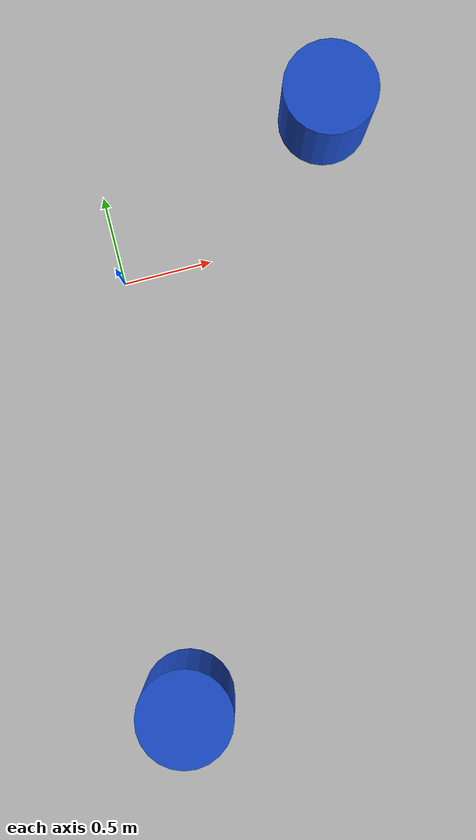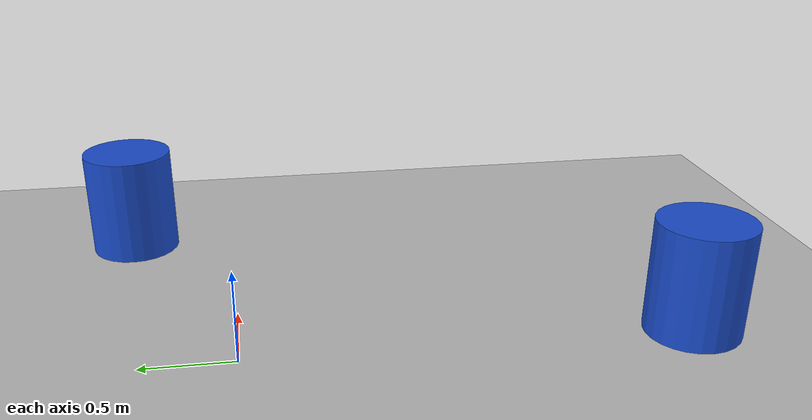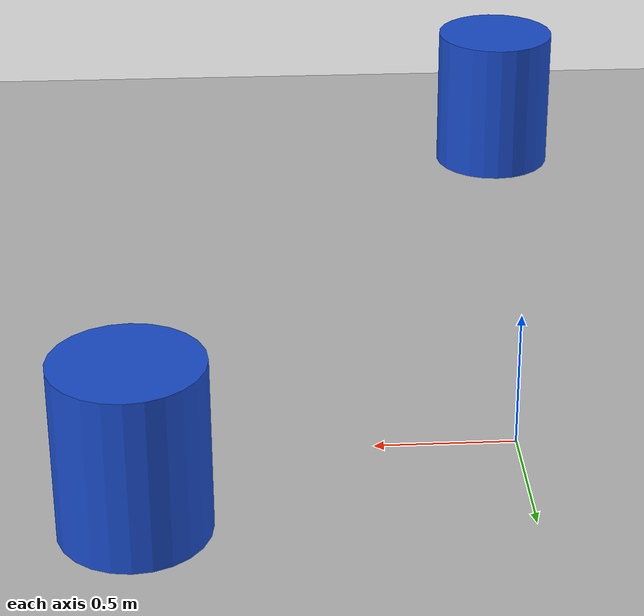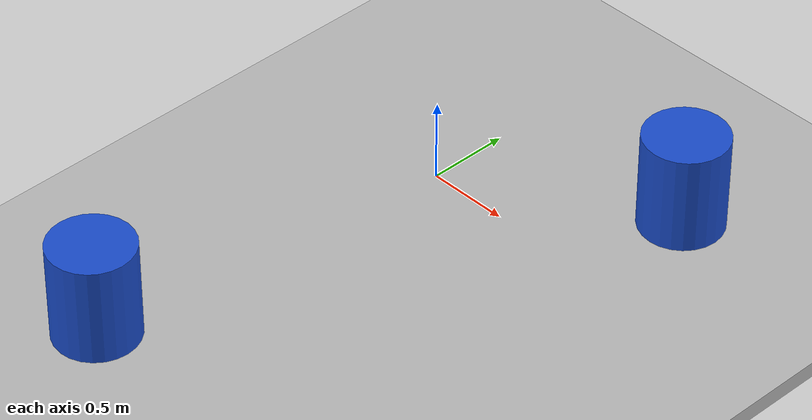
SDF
<?xml version="1.0" ?>
<sdf version="1.9">
  <world name="straight_lane_obstacles1">

    <plugin name='ignition::gazebo::systems::Physics' filename='ignition-gazebo-physics-system'/>
    <plugin name='ignition::gazebo::systems::UserCommands' filename='ignition-gazebo-user-commands-system'/>
    <plugin name='ignition::gazebo::systems::SceneBroadcaster' filename='ignition-gazebo-scene-broadcaster-system'/>

    <physics type="ode">
      <max_step_size>0.001</max_step_size>
      <real_time_update_rate>1000</real_time_update_rate>
    </physics>

    <scene>
      <ambient>0.1 0.1 0.1 0.1</ambient>
      <background>0.8 0.8 0.8 1.0</background>
      <grid>true</grid>
    </scene>

    <light type="directional" name="sun">
      <cast_shadows>true</cast_shadows>
      <pose>0 0 10 0 0 0</pose>
      <diffuse>1 1 1 1</diffuse>
      <specular>0.2 0.2 0.2 1</specular>
      <direction>-0.5 0.1 -0.9</direction>
    </light>

    <include>
      <uri>model://floor</uri>
      <pose>0 0 0 0 0 0</pose>
    </include>

    <gui fullscreen='0'>
      <camera name='user_camera'>
        <pose>-1.8 14.4 8.6 0.0 0.545 -1.65</pose>
        <view_controller>orbit</view_controller>
      </camera>
    </gui>

    <include>
      <uri>model://barrel</uri>
      <name>barrel_1</name>
      <pose>1.3 0.6 0.1 0 0 0</pose>
    </include>

    <include>
      <uri>model://barrel</uri>
      <name>barrel_2</name>
      <pose>-0.2 -2.3 0.1 0 0 0</pose>
    </include>

  </world>
</sdf>

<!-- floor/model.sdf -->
<sdf version="1.6">
  <model name="custom_course">
    <static>true</static>
    <link name="link">
      <collision name="collision">
        <geometry>
          <box>
            <size>10 10 0.1</size> <!-- PUT YOUR COURSE SIZE HERE IN METERS -->
          </box>
        </geometry>
      </collision>
      <visual name="visual">
        <geometry>
          <box>
            <size>10 10 0.1</size> <!-- PUT YOUR COURSE SIZE HERE IN METERS -->
          </box>
        </geometry>
        <material>
          <script>
            <uri>model://floor/materials/scripts</uri>
            <uri>model://floor/materials/textures</uri>
            <name>CustomCourse/Diffuse</name>
          </script>
        </material>
      </visual>
    </link>
  </model>
</sdf>

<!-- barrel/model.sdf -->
<sdf version="1.8">
  <model name="barrel">
    <static>true</static>
    <link name="link">
      <collision name="collision">
        <geometry>
          <cylinder>
            <radius>0.25</radius>
            <length>0.6</length>
          </cylinder>
        </geometry>
        <pose>0 0 0.3 0 0 0</pose>
      </collision>
      <visual name="visual">
        <geometry>
          <cylinder>
            <radius>0.25</radius>
            <length>0.6</length>
          </cylinder>
        </geometry>
        <pose>0 0 0.3 0 0 0</pose>
        <material>
          <ambient>0.1 0.3 0.8 1</ambient>
          <diffuse>0.1 0.3 0.8 1</diffuse>
          <specular>0.3 0.3 0.3 1</specular>
        </material>
      </visual>
    </link>
  </model>
</sdf>
